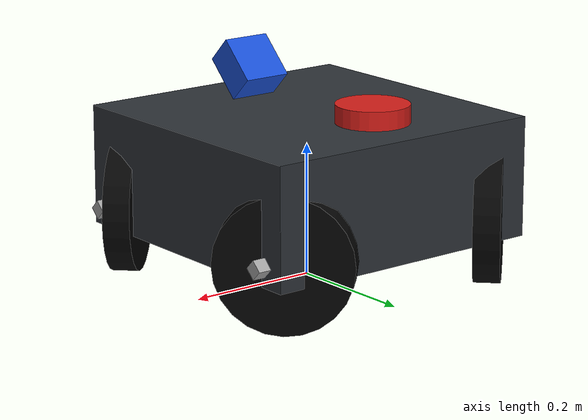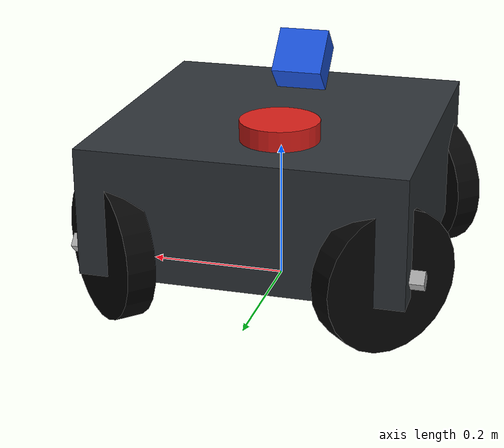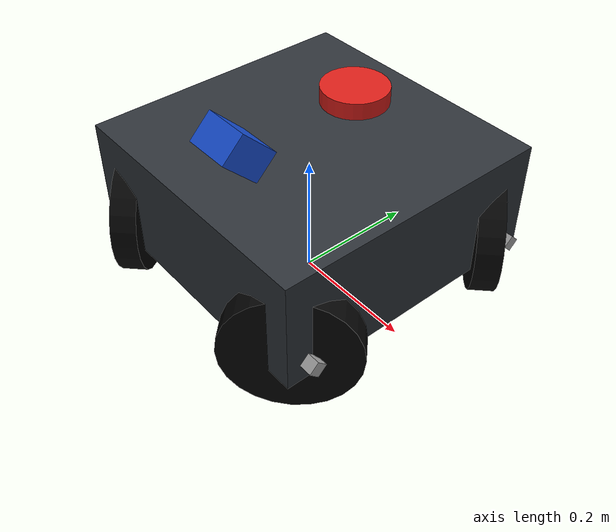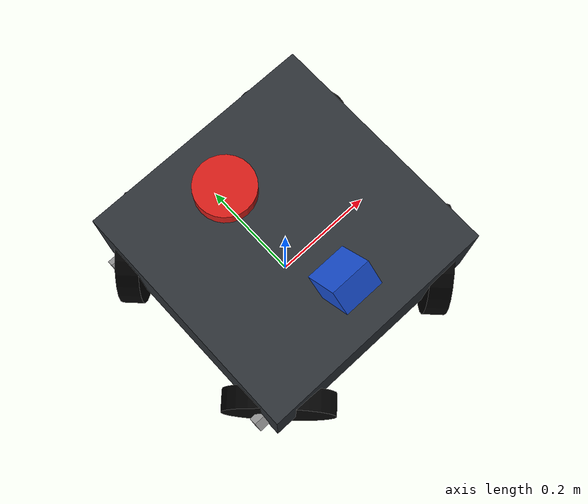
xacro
<?xml version="1.0"?>
<robot name="real_robot" xmlns:xacro="http://ros.org/wiki/xacro">

  <xacro:arg name="base_frame" default="odom"/>
  <xacro:arg name="robot_base_frame" default="robot_base"/>
  <xacro:arg name="cmd_topic" default="/cmd_vel"/>
  <xacro:arg name="odom_topic" default="/odom"/>
  <xacro:arg name="odom_frame" default="odom"/>
  <xacro:arg name="odin1_frame" default="odin1_base_link"/>
  <xacro:arg name="livox_frame" default="livox_frame"/>
  <xacro:arg name="odin1_cloud_topic" default="/odin1/cloud_slam"/>
  <xacro:arg name="odin1_cloud_frame" default="odin1_base_link"/>
  <xacro:arg name="livox_cloud_topic" default="livox/lidar"/>
  <xacro:arg name="wheel_prefix" default=""/>

  <xacro:property name="base_size" value="0.45"/>
  <xacro:property name="base_height" value="0.18"/>
  <xacro:property name="base_z" value="0.16"/>

  <xacro:property name="wheel_radius" value="0.10"/>
  <xacro:property name="wheel_width" value="0.04"/>
  <xacro:property name="wheel_xy_offset" value="0.19"/>
  <xacro:property name="wheel_z_offset" value="0.10"/>
  <xacro:property name="wheel_mount_yaw" value="0.785398"/>
  <xacro:property name="wheel_forward_friction" value="1.5"/>
  <xacro:property name="wheel_side_friction" value="0.05"/>

  <xacro:property name="odin1_x" value="-0.02897"/>
  <xacro:property name="odin1_y" value="0.11458"/>
  <xacro:property name="odin1_z" value="0.24799"/>
  <xacro:property name="odin1_roll" value="0.0"/>
  <xacro:property name="odin1_pitch" value="0.0"/>
  <xacro:property name="odin1_yaw" value="1.57079632679"/>

  <xacro:property name="livox_x" value="0.0025"/>
  <xacro:property name="livox_y" value="-0.13509"/>
  <xacro:property name="livox_z" value="0.29325"/>
  <xacro:property name="livox_roll" value="0.0"/>
  <xacro:property name="livox_pitch" value="-0.78539816339"/>
  <xacro:property name="livox_yaw" value="-1.57079632679"/>

  <xacro:macro name="real_omni_robot" params="base_frame robot_base_frame cmd_topic odom_topic odom_frame odin1_frame livox_frame odin1_cloud_topic odin1_cloud_frame livox_cloud_topic wheel_prefix">
    <!-- base link -->
    <link name="${robot_base_frame}">
      <visual>
        <origin xyz="0 0 ${base_z}" rpy="0 0 0"/>
        <geometry>
          <box size="${base_size} ${base_size} ${base_height}"/>
        </geometry>
        <material name="${wheel_prefix}base_gray">
          <color rgba="0.18 0.20 0.22 1.0"/>
        </material>
      </visual>

      <collision>
        <origin xyz="0 0 ${base_z}" rpy="0 0 0"/>
        <geometry>
          <box size="${base_size} ${base_size} ${base_height}"/>
        </geometry>
      </collision>

      <inertial>
        <origin xyz="0 0 ${base_z}" rpy="0 0 0"/>
        <mass value="8.0"/>
        <inertia
          ixx="0.15" ixy="0.0" ixz="0.0"
          iyy="0.15" iyz="0.0"
          izz="0.15"/>
      </inertial>
    </link>

    <!-- four omni wheels -->
    <xacro:macro name="omni_wheel" params="prefix x y wheel_yaw roller_yaw">
      <link name="${wheel_prefix}${prefix}_wheel_link">
        <visual>
          <origin xyz="0 0 0" rpy="1.5708 0 0"/>
          <geometry>
            <cylinder radius="${wheel_radius}" length="${wheel_width}"/>
          </geometry>
          <material name="${wheel_prefix}${prefix}_wheel_black">
            <color rgba="0.02 0.02 0.02 1.0"/>
          </material>
        </visual>

        <collision>
          <origin xyz="0 0 0" rpy="1.5708 0 0"/>
          <geometry>
            <cylinder radius="${wheel_radius}" length="${wheel_width}"/>
          </geometry>
        </collision>

        <inertial>
          <mass value="0.5"/>
          <inertia
            ixx="0.001" ixy="0.0" ixz="0.0"
            iyy="0.001" iyz="0.0"
            izz="0.001"/>
        </inertial>
      </link>

      <joint name="${wheel_prefix}${prefix}_wheel_joint" type="continuous">
        <parent link="${robot_base_frame}"/>
        <child link="${wheel_prefix}${prefix}_wheel_link"/>
        <origin xyz="${x} ${y} ${wheel_z_offset}" rpy="0 0 ${wheel_yaw}"/>
        <axis xyz="0 1 0"/>
      </joint>

      <link name="${wheel_prefix}${prefix}_roller_link">
        <visual>
          <origin xyz="0 0 0" rpy="0.7854 0 ${roller_yaw}"/>
          <geometry>
            <box size="0.11 0.02 0.02"/>
          </geometry>
          <material name="${wheel_prefix}${prefix}_roller_silver">
            <color rgba="0.65 0.65 0.65 1.0"/>
          </material>
        </visual>

        <collision>
          <origin xyz="0 0 0" rpy="0.7854 0 ${roller_yaw}"/>
          <geometry>
            <box size="0.11 0.02 0.02"/>
          </geometry>
        </collision>

        <inertial>
          <mass value="0.05"/>
          <inertia
            ixx="0.00005" ixy="0.0" ixz="0.0"
            iyy="0.00005" iyz="0.0"
            izz="0.00005"/>
        </inertial>
      </link>

      <joint name="${wheel_prefix}${prefix}_roller_fixed_joint" type="fixed">
        <parent link="${wheel_prefix}${prefix}_wheel_link"/>
        <child link="${wheel_prefix}${prefix}_roller_link"/>
        <origin xyz="0 0 0" rpy="0 0 0"/>
      </joint>

      <gazebo reference="${wheel_prefix}${prefix}_wheel_link">
        <material>Gazebo/Black</material>
        <fdir1>1 0 0</fdir1>
        <mu1>${wheel_forward_friction}</mu1>
        <mu2>${wheel_side_friction}</mu2>
      </gazebo>

      <gazebo reference="${wheel_prefix}${prefix}_roller_link">
        <material>Gazebo/Grey</material>
        <mu1>0.05</mu1>
        <mu2>0.05</mu2>
      </gazebo>
    </xacro:macro>

    <xacro:omni_wheel
      prefix="front_left"
      x="${wheel_xy_offset}"
      y="${wheel_xy_offset}"
      wheel_yaw="${-wheel_mount_yaw}"
      roller_yaw="0.7854"/>
    <xacro:omni_wheel
      prefix="front_right"
      x="${wheel_xy_offset}"
      y="${-wheel_xy_offset}"
      wheel_yaw="${wheel_mount_yaw}"
      roller_yaw="-0.7854"/>
    <xacro:omni_wheel
      prefix="rear_left"
      x="${-wheel_xy_offset}"
      y="${wheel_xy_offset}"
      wheel_yaw="${wheel_mount_yaw}"
      roller_yaw="-0.7854"/>
    <xacro:omni_wheel
      prefix="rear_right"
      x="${-wheel_xy_offset}"
      y="${-wheel_xy_offset}"
      wheel_yaw="${-wheel_mount_yaw}"
      roller_yaw="0.7854"/>

    <!-- lidar/camera links -->
    <link name="${odin1_frame}">
      <visual>
        <origin xyz="0 0 0" rpy="0 0 0"/>
        <geometry>
          <cylinder radius="0.055" length="0.06"/>
        </geometry>
        <material name="${wheel_prefix}odin1_red">
          <color rgba="0.85 0.12 0.10 1.0"/>
        </material>
      </visual>

      <collision>
        <origin xyz="0 0 0" rpy="0 0 0"/>
        <geometry>
          <cylinder radius="0.055" length="0.06"/>
        </geometry>
      </collision>

      <inertial>
        <mass value="0.2"/>
        <inertia
          ixx="0.0005" ixy="0.0" ixz="0.0"
          iyy="0.0005" iyz="0.0"
          izz="0.0005"/>
      </inertial>
    </link>

    <joint name="${robot_base_frame}_to_${odin1_frame}" type="fixed">
      <parent link="${robot_base_frame}"/>
      <child link="${odin1_frame}"/>
      <origin xyz="${odin1_x} ${odin1_y} ${odin1_z}" rpy="${odin1_roll} ${odin1_pitch} ${odin1_yaw}"/>
    </joint>

    <link name="${livox_frame}">
      <visual>
        <origin xyz="0 0 0" rpy="0 0 0"/>
        <geometry>
          <box size="0.075 0.075 0.05"/>
        </geometry>
        <material name="${wheel_prefix}livox_blue">
          <color rgba="0.10 0.32 0.85 1.0"/>
        </material>
      </visual>

      <collision>
        <origin xyz="0 0 0" rpy="0 0 0"/>
        <geometry>
          <box size="0.075 0.075 0.05"/>
        </geometry>
      </collision>

      <inertial>
        <mass value="0.2"/>
        <inertia
          ixx="0.0005" ixy="0.0" ixz="0.0"
          iyy="0.0005" iyz="0.0"
          izz="0.0005"/>
      </inertial>
    </link>

    <joint name="${robot_base_frame}_to_${livox_frame}" type="fixed">
      <parent link="${robot_base_frame}"/>
      <child link="${livox_frame}"/>
      <origin xyz="${livox_x} ${livox_y} ${livox_z}" rpy="${livox_roll} ${livox_pitch} ${livox_yaw}"/>
    </joint>

    <!-- Gazebo lidar sensors -->
    <!-- PointCloud2 -->
    <gazebo reference="${odin1_frame}">
      <sensor name="${wheel_prefix}odin1_pointcloud_lidar" type="gpu_ray">
        <always_on>true</always_on>
        <update_rate>10</update_rate>
        <visualize>false</visualize>

        <pose>0 0 0 0 0 0</pose>

        <ray>
          <scan>
            <horizontal>
              <samples>120</samples>
              <resolution>1</resolution>
              <min_angle>-1.047198</min_angle>
              <max_angle>1.047198</max_angle>
            </horizontal>

            <vertical>
              <samples>16</samples>
              <resolution>1</resolution>
              <min_angle>-0.392699</min_angle>
              <max_angle>0.392699</max_angle>
            </vertical>
          </scan>

          <range>
            <min>0.1</min>
            <max>20.0</max>
            <resolution>0.02</resolution>
          </range>

          <noise>
            <type>gaussian</type>
            <mean>0.0</mean>
            <stddev>0.01</stddev>
          </noise>
        </ray>

        <plugin name="${wheel_prefix}odin1_gazebo_ros_pointcloud" filename="libgazebo_ros_ray_sensor.so">
          <ros>
            <namespace>/</namespace>
            <remapping>~/out:=${odin1_cloud_topic}</remapping>
          </ros>
          <output_type>sensor_msgs/PointCloud2</output_type>
          <frame_name>${odin1_cloud_frame}</frame_name>
        </plugin>
      </sensor>
    </gazebo>

    <gazebo reference="${livox_frame}">
      <sensor name="${wheel_prefix}mid360_pointcloud_lidar" type="gpu_ray">
        <always_on>true</always_on>
        <update_rate>10</update_rate>
        <visualize>false</visualize>

        <pose>0 0 0 0 0 0</pose>

        <ray>
          <scan>
            <horizontal>
              <samples>180</samples>
              <resolution>1</resolution>
              <min_angle>-1.570796</min_angle>
              <max_angle>1.570796</max_angle>
            </horizontal>

            <vertical>
              <samples>16</samples>
              <resolution>1</resolution>
              <min_angle>-1.570796</min_angle>
              <max_angle>0.392699</max_angle>
            </vertical>
          </scan>

          <range>
            <min>0.1</min>
            <max>20.0</max>
            <resolution>0.02</resolution>
          </range>

          <noise>
            <type>gaussian</type>
            <mean>0.0</mean>
            <stddev>0.01</stddev>
          </noise>
        </ray>

        <plugin name="${wheel_prefix}mid360_gazebo_ros_pointcloud" filename="libgazebo_ros_ray_sensor.so">
          <ros>
            <namespace>/</namespace>
            <remapping>~/out:=${livox_cloud_topic}</remapping>
          </ros>
          <output_type>sensor_msgs/PointCloud2</output_type>
          <frame_name>${livox_frame}</frame_name>
        </plugin>
      </sensor>
    </gazebo>

    <gazebo reference="${robot_base_frame}">
      <material>Gazebo/Grey</material>
    </gazebo>

    <!-- Gazebo omni drive plugin -->
    <gazebo>
      <plugin name="${wheel_prefix}omni_drive_controller" filename="libgazebo_ros_planar_move.so">
        <ros>
          <namespace>/</namespace>
          <remapping>cmd_vel:=${cmd_topic}</remapping>
          <remapping>odom:=${odom_topic}</remapping>
        </ros>

        <command_topic>${cmd_topic}</command_topic>
        <odometry_topic>${odom_topic}</odometry_topic>
        <odometry_frame>${odom_frame}</odometry_frame>
        <robot_base_frame>${robot_base_frame}</robot_base_frame>

        <publish_odom>true</publish_odom>
        <publish_odom_tf>true</publish_odom_tf>

        <update_rate>50</update_rate>
      </plugin>
    </gazebo>
  </xacro:macro>

  <xacro:real_omni_robot
    base_frame="$(arg base_frame)"
    robot_base_frame="$(arg robot_base_frame)"
    cmd_topic="$(arg cmd_topic)"
    odom_topic="$(arg odom_topic)"
    odom_frame="$(arg odom_frame)"
    odin1_frame="$(arg odin1_frame)"
    livox_frame="$(arg livox_frame)"
    odin1_cloud_topic="$(arg odin1_cloud_topic)"
    odin1_cloud_frame="$(arg odin1_cloud_frame)"
    livox_cloud_topic="$(arg livox_cloud_topic)"
    wheel_prefix="$(arg wheel_prefix)"/>

</robot>
